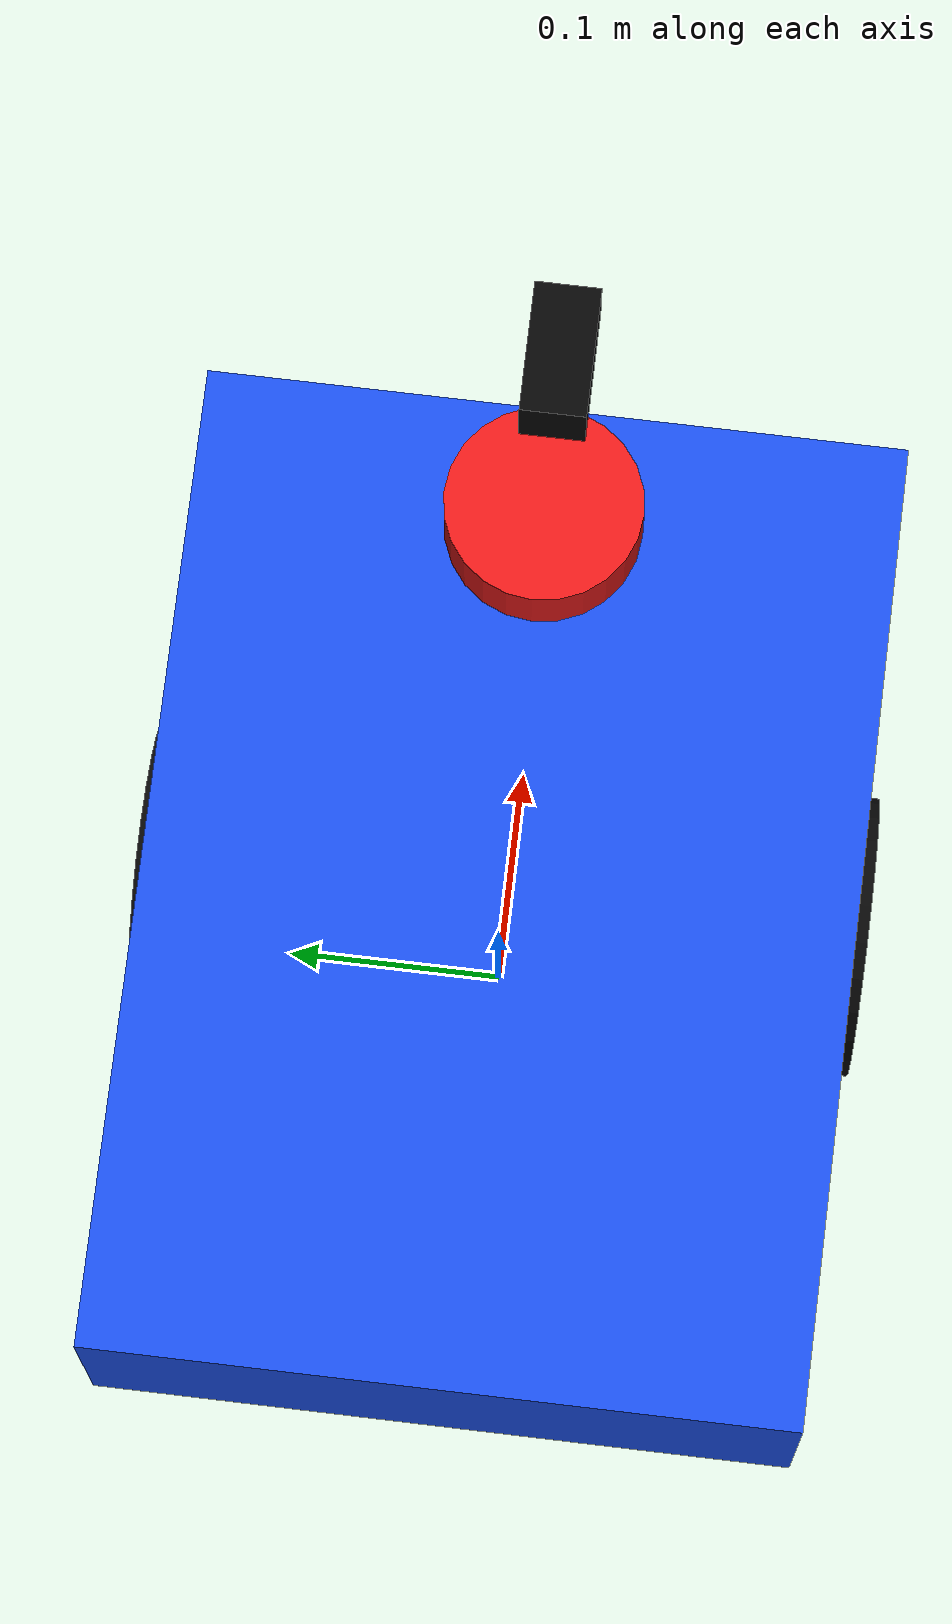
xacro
<?xml version="1.0"?>
<robot name="sim_robot" xmlns:xacro="http://ros.org/wiki/xacro">

  <!-- ===================== Properties ===================== -->
  <xacro:property name="base_length" value="0.45"/>
  <xacro:property name="base_width"  value="0.32"/>
  <xacro:property name="base_height" value="0.12"/>

  <xacro:property name="wheel_radius" value="0.065"/>
  <xacro:property name="wheel_width"  value="0.035"/>
  <xacro:property name="wheel_separation" value="0.30"/>
  <!-- Move the drive axle slightly forward so the front sensors do not pull the body nose-down. -->
  <xacro:property name="wheel_x" value="0.025"/>
  <xacro:property name="wheel_z" value="${wheel_radius}"/>
  <!-- Keep base_link on the ground projection and lift the chassis above the wheels. -->
  <xacro:property name="base_center_z" value="${wheel_z + base_height / 2.0}"/>
  <xacro:property name="support_radius" value="0.035"/>
  <xacro:property name="rear_support_x" value="-0.155"/>
  <xacro:property name="rear_support_z" value="${support_radius}"/>

  <!-- ===================== Materials ===================== -->
  <material name="black">
    <color rgba="0.02 0.02 0.02 1.0"/>
  </material>

  <material name="blue">
    <color rgba="0.1 0.3 0.9 1.0"/>
  </material>

  <material name="gray">
    <color rgba="0.5 0.5 0.5 1.0"/>
  </material>

  <material name="red">
    <color rgba="0.9 0.1 0.1 1.0"/>
  </material>

  <!-- ===================== Base Link ===================== -->
  <link name="base_link">
    <inertial>
      <origin xyz="0 0 ${base_center_z}" rpy="0 0 0"/>
      <mass value="8.0"/>
      <inertia
        ixx="0.08"
        ixy="0.0"
        ixz="0.0"
        iyy="0.12"
        iyz="0.0"
        izz="0.15"/>
    </inertial>

    <visual>
      <origin xyz="0 0 ${base_center_z}" rpy="0 0 0"/>
      <geometry>
        <box size="${base_length} ${base_width} ${base_height}"/>
      </geometry>
      <material name="blue"/>
    </visual>

    <collision>
      <origin xyz="0 0 ${base_center_z}" rpy="0 0 0"/>
      <geometry>
        <box size="${base_length} ${base_width} ${base_height}"/>
      </geometry>
    </collision>
  </link>

  <!-- ===================== Left Wheel ===================== -->
  <link name="left_wheel_link">
    <inertial>
      <origin xyz="0 0 0" rpy="0 0 0"/>
      <mass value="0.5"/>
      <inertia ixx="0.001" ixy="0" ixz="0" iyy="0.001" iyz="0" izz="0.001"/>
    </inertial>

    <visual>
      <origin xyz="0 0 0" rpy="1.5708 0 0"/>
      <geometry>
        <cylinder radius="${wheel_radius}" length="${wheel_width}"/>
      </geometry>
      <material name="black"/>
    </visual>

    <collision>
      <origin xyz="0 0 0" rpy="1.5708 0 0"/>
      <geometry>
        <cylinder radius="${wheel_radius}" length="${wheel_width}"/>
      </geometry>
    </collision>
  </link>

  <joint name="left_wheel_joint" type="continuous">
    <parent link="base_link"/>
    <child link="left_wheel_link"/>
    <origin xyz="${wheel_x} ${wheel_separation / 2.0} ${wheel_z}" rpy="0 0 0"/>
    <axis xyz="0 1 0"/>
  </joint>

  <!-- ===================== Right Wheel ===================== -->
  <link name="right_wheel_link">
    <inertial>
      <origin xyz="0 0 0" rpy="0 0 0"/>
      <mass value="0.5"/>
      <inertia ixx="0.001" ixy="0" ixz="0" iyy="0.001" iyz="0" izz="0.001"/>
    </inertial>

    <visual>
      <origin xyz="0 0 0" rpy="1.5708 0 0"/>
      <geometry>
        <cylinder radius="${wheel_radius}" length="${wheel_width}"/>
      </geometry>
      <material name="black"/>
    </visual>

    <collision>
      <origin xyz="0 0 0" rpy="1.5708 0 0"/>
      <geometry>
        <cylinder radius="${wheel_radius}" length="${wheel_width}"/>
      </geometry>
    </collision>
  </link>

  <joint name="right_wheel_joint" type="continuous">
    <parent link="base_link"/>
    <child link="right_wheel_link"/>
    <origin xyz="${wheel_x} -${wheel_separation / 2.0} ${wheel_z}" rpy="0 0 0"/>
    <axis xyz="0 1 0"/>
  </joint>

  <!-- ===================== Caster ===================== -->
  <link name="caster_link">
    <visual>
      <origin xyz="0 0 0" rpy="0 0 0"/>
      <geometry>
        <sphere radius="${support_radius}"/>
      </geometry>
      <material name="gray"/>
    </visual>

    <collision>
      <origin xyz="0 0 0" rpy="0 0 0"/>
      <geometry>
        <sphere radius="${support_radius}"/>
      </geometry>
    </collision>

    <inertial>
      <mass value="0.1"/>
      <inertia ixx="0.0001" ixy="0" ixz="0" iyy="0.0001" iyz="0" izz="0.0001"/>
    </inertial>
  </link>

  <joint name="caster_joint" type="fixed">
    <parent link="base_link"/>
    <child link="caster_link"/>
    <origin xyz="${rear_support_x} 0 ${rear_support_z}" rpy="0 0 0"/>
  </joint>

  <!-- ===================== Laser ===================== -->
  <link name="laser">
    <visual>
      <origin xyz="0 0 0" rpy="0 0 0"/>
      <geometry>
        <cylinder radius="0.045" length="0.04"/>
      </geometry>
      <material name="red"/>
    </visual>

    <collision>
      <origin xyz="0 0 0" rpy="0 0 0"/>
      <geometry>
        <cylinder radius="0.045" length="0.04"/>
      </geometry>
    </collision>

    <inertial>
      <mass value="0.2"/>
      <inertia ixx="0.0002" ixy="0" ixz="0" iyy="0.0002" iyz="0" izz="0.0002"/>
    </inertial>
  </link>

  <joint name="laser_joint" type="fixed">
    <parent link="base_link"/>
    <child link="laser"/>
    <origin xyz="0.17 0 0.20" rpy="0 0 0"/>
  </joint>

  <!-- ===================== Depth Camera ===================== -->
  <link name="depth_camera_link">
    <visual>
      <origin xyz="0 0 0" rpy="0 0 0"/>
      <geometry>
        <box size="0.06 0.03 0.035"/>
      </geometry>
      <material name="black"/>
    </visual>

    <collision>
      <origin xyz="0 0 0" rpy="0 0 0"/>
      <geometry>
        <box size="0.06 0.03 0.035"/>
      </geometry>
    </collision>

    <inertial>
      <mass value="0.15"/>
      <inertia ixx="0.0001" ixy="0" ixz="0" iyy="0.0001" iyz="0" izz="0.0001"/>
    </inertial>
  </link>

  <joint name="depth_camera_joint" type="fixed">
    <parent link="base_link"/>
    <child link="depth_camera_link"/>
    <origin xyz="0.23 0 0.24" rpy="0 0 0"/>
  </joint>

  <!-- ===================== Gazebo Base Colors ===================== -->
  <gazebo reference="base_link">
    <material>Gazebo/Blue</material>
  </gazebo>

  <gazebo reference="left_wheel_link">
    <material>Gazebo/Black</material>
    <mu1>1.0</mu1>
    <mu2>1.0</mu2>
  </gazebo>

  <gazebo reference="right_wheel_link">
    <material>Gazebo/Black</material>
    <mu1>1.0</mu1>
    <mu2>1.0</mu2>
  </gazebo>

  <gazebo reference="laser">
    <material>Gazebo/Red</material>
  </gazebo>

  <gazebo reference="depth_camera_link">
    <material>Gazebo/Black</material>
  </gazebo>

  <!-- ===================== Diff Drive Plugin ===================== -->
  <gazebo>
    <plugin name="diff_drive_controller" filename="libgazebo_ros_diff_drive.so">
      <ros>
        <namespace>/</namespace>
        <remapping>cmd_vel:=/cmd_vel_selected</remapping>
        <remapping>odom:=/wheel/odom</remapping>
      </ros>

      <update_rate>50</update_rate>

      <left_joint>left_wheel_joint</left_joint>
      <right_joint>right_wheel_joint</right_joint>

      <wheel_separation>${wheel_separation}</wheel_separation>
      <wheel_diameter>${wheel_radius * 2.0}</wheel_diameter>

      <max_wheel_torque>20</max_wheel_torque>
      <max_wheel_acceleration>3.0</max_wheel_acceleration>

      <publish_odom>true</publish_odom>
      <publish_odom_tf>true</publish_odom_tf>
      <publish_wheel_tf>true</publish_wheel_tf>

      <odometry_frame>odom</odometry_frame>
      <robot_base_frame>base_link</robot_base_frame>
    </plugin>
  </gazebo>

  <!-- ===================== 120 Degree Laser Plugin ===================== -->
  <gazebo reference="laser">
    <sensor name="front_laser" type="ray">
      <always_on>true</always_on>
      <visualize>true</visualize>
      <update_rate>10</update_rate>

      <ray>
        <scan>
          <horizontal>
            <samples>441</samples>
            <resolution>1</resolution>
            <!-- 120 degree FOV -->
            <min_angle>-1.04719755</min_angle>
            <max_angle>1.04719755</max_angle>
          </horizontal>
        </scan>

        <range>
          <min>0.12</min>
          <max>12.0</max>
          <resolution>0.01</resolution>
        </range>

        <noise>
          <type>gaussian</type>
          <mean>0.0</mean>
          <stddev>0.01</stddev>
        </noise>
      </ray>

      <plugin name="gazebo_ros_laser" filename="libgazebo_ros_ray_sensor.so">
        <ros>
          <namespace>/</namespace>
          <remapping>~/out:=/scan</remapping>
        </ros>
        <output_type>sensor_msgs/LaserScan</output_type>
        <frame_name>laser</frame_name>
      </plugin>
    </sensor>
  </gazebo>

  <!-- ===================== Depth Camera Plugin ===================== -->
  <gazebo reference="depth_camera_link">
    <sensor name="depth_camera" type="depth">
      <always_on>true</always_on>
      <visualize>true</visualize>
      <update_rate>30</update_rate>

      <camera>
        <horizontal_fov>1.04719755</horizontal_fov>
        <image>
          <width>640</width>
          <height>480</height>
          <format>R8G8B8</format>
        </image>
        <clip>
          <near>0.10</near>
          <far>5.0</far>
        </clip>
      </camera>

      <plugin name="depth_camera_controller" filename="libgazebo_ros_camera.so">
        <ros>
          <namespace>/camera</namespace>
        </ros>

        <camera_name>depth_camera</camera_name>
        <frame_name>depth_camera_link</frame_name>

        <image_topic_name>color/image_raw</image_topic_name>
        <camera_info_topic_name>color/camera_info</camera_info_topic_name>
        <depth_image_topic_name>depth/image_raw</depth_image_topic_name>
        <depth_image_camera_info_topic_name>depth/camera_info</depth_image_camera_info_topic_name>
        <point_cloud_topic_name>depth/points</point_cloud_topic_name>
      </plugin>
    </sensor>
  </gazebo>

</robot>
